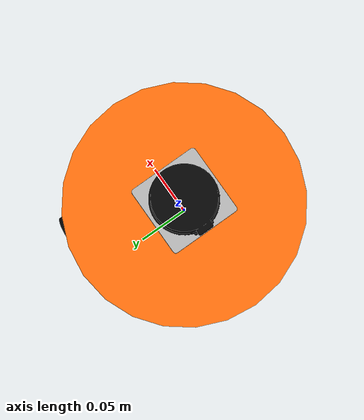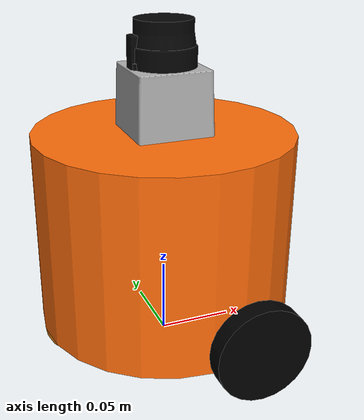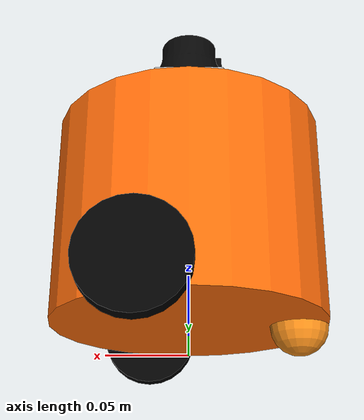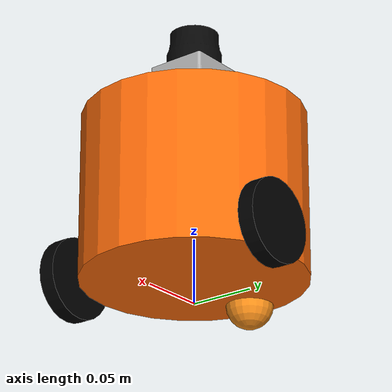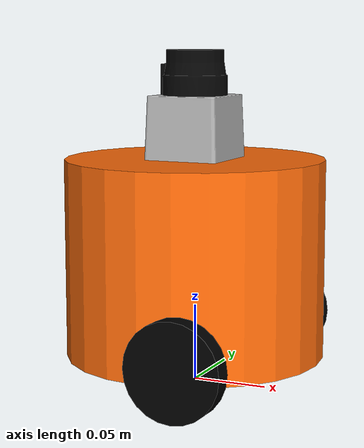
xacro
<?xml version="1.0"?>
<robot xmlns:xacro="http://www.ros.org/wiki/xacro" name="diffrobot">

  <xacro:arg name="ns" default=""/>

  <!-- This will include all the contents of example_include.xacro first. Go check it out! -->
  <xacro:include filename="diffrobot_include.xacro" />
  <xacro:include filename="diffrobot_gazebo.xacro" />

  <!-- Robot footprint -->
  <link name="$(arg ns)base_footprint"/>

  <joint name="$(arg ns)base_joint" type="fixed">
    <parent link="$(arg ns)base_footprint"/>
    <child link="$(arg ns)base_link"/>
    <origin xyz="0.0 0.0 ${caster_radius+chassis_length/2}" rpy="0.0 0.0 0.0"/>
  </joint>

  <!-- Robot base link -->
  <link name="$(arg ns)base_link">
    <visual name="$(arg ns)base_link_visual">
      <origin xyz="0 0 0" rpy="0 0 0"/>
      <geometry>
        <cylinder length="${chassis_length}" radius="${chassis_radius}"/>
      </geometry>
      <material name="orange"/>
    </visual>

    <collision name="$(arg ns)base_link_collision">
      <origin xyz="0 0 0" rpy="0 0 0"/>
      <geometry>
        <cylinder length="${chassis_length}" radius="${chassis_radius}"/>
      </geometry>
    </collision>

    <visual name="$(arg ns)base_link_caster_visual">
      <origin xyz="-${chassis_radius - caster_radius} 0 ${-chassis_length/2}" rpy="0 0 0"/>
      <geometry>
        <sphere radius="${caster_radius}"/>
      </geometry>
    </visual>

    <collision name="$(arg ns)base_link_caster_collision">
      <origin xyz="-${chassis_radius - caster_radius} 0 ${-chassis_length/2}" rpy="0 0 0"/>
      <geometry>
        <sphere radius="${caster_radius}"/>
      </geometry>
      <surface>
        <friction>
          <ode>
            <mu>0</mu>
            <mu2>0</mu2>
            <slip1>1.0</slip1>
            <slip2>1.0</slip2>
          </ode>
        </friction>
      </surface>
    </collision>

    <xacro:inertial_cylinder radius="${chassis_radius}" length="${chassis_length}" mass="${chassis_mass}">
      <origin xyz="0 0 0" rpy="0 0 0"/>
    </xacro:inertial_cylinder>
  </link>
  <!-- base_link -->

  <!-- wheel definition -->
  <xacro:wheel prefix="left" reflect="1.0"/>
  <xacro:wheel prefix="right" reflect="-1.0"/>

  <!-- LIDAR -->
  <link name="$(arg ns)lidar">
    <collision>
      <origin xyz="0 0 0" rpy="0 0 0"/>
      <geometry>
        <cylinder length="0.07" radius="0.105"/>
      </geometry>
    </collision>

    <visual>
      <origin xyz="0 0 0" rpy="0 0 0"/>
      <geometry>
        <mesh filename="file://$(find diffrobot_description)/meshes/hokuyo.dae"/>
      </geometry>
    </visual>

    <inertial>
      <mass value="1e-5" />
      <origin xyz="0 0 0" rpy="0 0 0"/>
      <inertia ixx="1e-6" ixy="0" ixz="0" iyy="1e-6" iyz="0" izz="1e-6" />
    </inertial>
  </link>

  <joint name="$(arg ns)lidar_joint" type="fixed">
    <origin xyz="0 0 ${chassis_length/2 + 0.035}" rpy="0 0 0"/>
    <parent link="$(arg ns)base_link"/>
    <child link="$(arg ns)lidar"/>
  </joint>

</robot>

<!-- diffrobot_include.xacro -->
<robot name ="diffrobot"
  xmlns:xacro="http://www.ros.org/wiki/xacro">

  <!-- This file is not a robot in and of itself, it just contains some useful tags that could be included in any robot -->

  <xacro:property name="chassis_radius" value="0.085" />
  <xacro:property name="chassis_length" value="0.13" />
  <xacro:property name="chassis_mass" value="5" />
  <xacro:property name="caster_radius" value="0.018" />
  <xacro:property name="PI" value="3.1415"/>
  <xacro:property name="wheels_radius" value="0.0315" />
  <xacro:property name="wheels_length" value="0.0125" />
  <xacro:property name="wheels_mass" value="2" />
  <xacro:property name="wheels_x_axis_offset" value="${chassis_radius/3}" />
  <xacro:property name="line_sensor_width" value="0.02"/>
  <xacro:property name="line_sensor_height" value="0.0025"/>
  <xacro:property name="line_sensor_length" value="${2*chassis_radius}"/>
  <xacro:property name="PCB_box_length" value="0.2" />
  <xacro:property name="PCB_box_width" value="0.3" />
  <xacro:property name="PCB_box_height" value="0.1" />
  <xacro:property name="PI" value="3.1415"/>
  <xacro:property name="ultrasonic_sensor_pcb_length" value="0.045"/>
  <xacro:property name="ultrasonic_sensor_pcb_width" value="0.020"/>
  <xacro:property name="ultrasonic_sensor_pcb_height" value="0.0015"/>
  <xacro:property name="ultrasonic_sensor_radius" value="0.008"/>
  <xacro:property name="ultrasonic_sensor_height" value="0.012"/>
  <xacro:property name="ultrasonic_sensor_rt_distance" value="0.026"/>

  <!-- Specify some colours -->

  <material name="black">
    <color rgba="0.0 0.0 0.0 1.0"/>
  </material>

  <material name="orange">
    <color rgba="${255/255} ${108/255} ${10/255} 1.0"/>
  </material>

  <material name="gray">
    <color rgba="${128/255} ${128/255} ${128/255} 1.0"/>
  </material>

  <material name="darkblue">
    <color rgba="${60/255} ${50/255} ${200/255} 1.0"/>
  </material>

  <!-- Specify some standard inertial calculations https://en.wikipedia.org/wiki/List_of_moments_of_inertia -->
  <!-- These make use of xacro's mathematical functionality -->

  <xacro:macro name="inertial_cylinder" params="radius length mass *origin">
    <inertial>
      <xacro:insert_block name="origin"/>
      <mass value ="${mass}" />
      <inertia ixx="${(1/12)*mass*(3*radius*radius+length*length)}" ixy="0.0" ixz="0.0" iyy="${(1/12)*mass*(3*radius*radius+length*length)}" iyz="0.0" izz="${(1/2)*mass*radius*radius}" />
    </inertial>
  </xacro:macro>

  <xacro:macro name="wheel" params="prefix reflect">
    <link name="$(arg ns)${prefix}_wheel">
      <visual name="$(arg ns)${prefix}_wheel_visual">
        <geometry>
          <cylinder length="${wheels_length}" radius="${wheels_radius}"/>
        </geometry>
        <origin xyz="0 0 0" rpy="0 0 0"/>
        <material name="black" />
      </visual>

      <collision name="$(arg ns)${prefix}_wheel_collision">
        <geometry>
          <cylinder length="${wheels_length}" radius="${wheels_radius}"/>
        </geometry>
        <origin xyz="0 0 0" rpy="0 0 0"/>
      </collision>

      <xacro:inertial_cylinder radius="${wheels_radius}" length="${wheels_length}" mass="${wheels_mass}">
        <origin xyz="0 0 0" rpy="0 0 0" />
      </xacro:inertial_cylinder>
    </link>

    <joint name="$(arg ns)${prefix}_wheel_base_link_joint" type="continuous">
      <axis xyz="0 0 1" rpy="0 0 0"/>
      <parent link="$(arg ns)base_link"/>
      <child link="$(arg ns)${prefix}_wheel"/>
      <origin xyz="${wheels_x_axis_offset} ${reflect * (chassis_radius + wheels_length/2)} ${-chassis_length/2 -caster_radius + wheels_radius}" rpy="0 ${PI/2} ${PI/2}"/>
      <dynamics damping="0.0" friction="0.0"/>
    </joint>
  </xacro:macro>

</robot>
